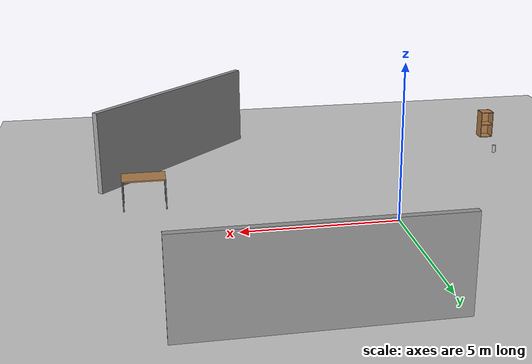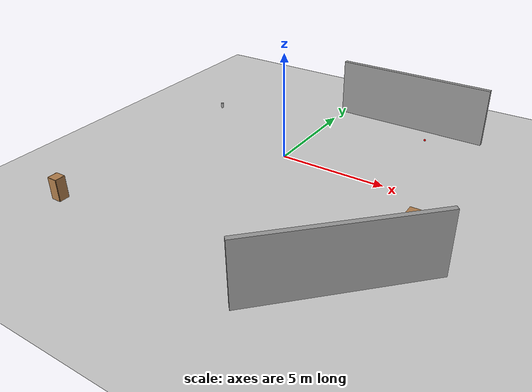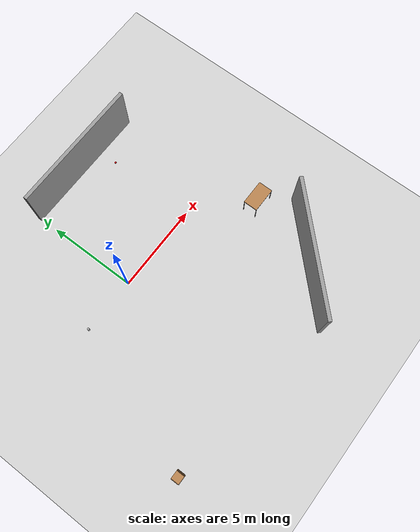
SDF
<sdf version="1.6">
 <world name="default">
  <light name="sun" type="directional">
   <pose>0 0 10 0 -0 0</pose>
   <diffuse>0.8 0.8 0.8 1</diffuse>
   <specular>0.1 0.1 0.1 1</specular>
   <attenuation>
    <range>1000</range>
    <constant>0.9</constant>
    <linear>0.01</linear>
    <quadratic>0.001</quadratic>
   </attenuation>
   <direction>-0.5 0.5 -1</direction>
  </light>
  <model name="ground_plane">
   <static>1</static>
   <link name="link">
    <collision name="collision">
     <geometry><plane><normal>0 0 1</normal><size>100 100</size></plane></geometry>
     <surface><friction><ode><mu>100</mu><mu2>50</mu2></ode></friction></surface>
    </collision>
    <visual name="visual">
     <cast_shadows>0</cast_shadows>
     <geometry><plane><normal>0 0 1</normal><size>100 100</size></plane></geometry>
     <material>
      <script><uri>file://media/materials/scripts/gazebo.material</uri><name>Gazebo/Grey</name></script>
     </material>
    </visual>
   </link>
  </model>
  <gravity>0 0 -9.8</gravity>
  <magnetic_field>6e-06 2.3e-05 -4.2e-05</magnetic_field>
  <atmosphere type="adiabatic"/>
  <physics name="default_physics" default="0" type="ode">
   <max_step_size>0.001</max_step_size>
   <real_time_factor>1</real_time_factor>
   <real_time_update_rate>1000</real_time_update_rate>
  </physics>
  <scene><ambient>0.4 0.4 0.4 1</ambient><background>0.7 0.7 0.7 1</background><shadows>1</shadows></scene>
  <spherical_coordinates>
   <surface_model>EARTH_WGS84</surface_model>
   <latitude_deg>0</latitude_deg>
   <longitude_deg>0</longitude_deg>
   <elevation>0</elevation>
   <heading_deg>0</heading_deg>
  </spherical_coordinates>
  <model name="beer">
   <link name="link">
    <pose>0 0 0.115 0 -0 0</pose>
    <inertial>
     <mass>0.39</mass>
     <inertia><ixx>0.00058</ixx><ixy>0</ixy><ixz>0</ixz><iyy>0.00058</iyy><iyz>0</iyz><izz>0.00019</izz></inertia>
    </inertial>
    <collision name="collision">
     <geometry><cylinder><radius>0.055</radius><length>0.23</length></cylinder></geometry>
    </collision>
    <visual name="visual">
     <geometry><cylinder><radius>0.055</radius><length>0.23</length></cylinder></geometry>
     <material>
      <script>
       <uri>model://beer/materials/scripts</uri>
       <uri>model://beer/materials/textures</uri>
       <name>Beer/Diffuse</name>
      </script>
     </material>
    </visual>
   </link>
   <pose>-3.1537 -0.469796 1.91505 -1.9e-05 1e-05 -0.001125</pose>
  </model>
  <model name="cabinet">
   <static>1</static>
   <link name="cabinet_bottom_plate">
    <inertial>
     <pose>0 0 -1 0 -0 0</pose>
     <inertia><ixx>2.05</ixx><ixy>0</ixy><ixz>0</ixz><iyy>2.05</iyy><iyz>0</iyz><izz>2.05</izz></inertia>
     <mass>25</mass>
    </inertial>
    <collision name="cabinet_bottom_plate_geom">
     <pose>0 0 0.01 0 -0 0</pose>
     <geometry><box><size>0.45 0.45 0.02</size></box></geometry>
    </collision>
    <visual name="cabinet_bottom_plate_geom_visual">
     <pose>0 0 0.01 0 -0 0</pose>
     <geometry><box><size>0.45 0.45 0.02</size></box></geometry>
     <material>
      <script><uri>file://media/materials/scripts/gazebo.material</uri><name>Gazebo/Wood</name></script>
     </material>
    </visual>
    <collision name="cabinet_bottom_plate_geom_cabinet_back_plate">
     <pose>0.235 0 0.51 0 -0 0</pose>
     <geometry><box><size>0.02 0.45 1.02</size></box></geometry>
    </collision>
    <visual name="cabinet_bottom_plate_geom_cabinet_back_plate_visual">
     <pose>0.235 0 0.51 0 -0 0</pose>
     <geometry><box><size>0.02 0.45 1.02</size></box></geometry>
     <material>
      <script><uri>file://media/materials/scripts/gazebo.material</uri><name>Gazebo/Wood</name></script>
     </material>
    </visual>
    <collision name="cabinet_bottom_plate_geom_cabinet_left_plate">
     <pose>0 0.235 0.51 0 -0 0</pose>
     <geometry><box><size>0.45 0.02 1.02</size></box></geometry>
    </collision>
    <visual name="cabinet_bottom_plate_geom_cabinet_left_plate_visual">
     <pose>0 0.235 0.51 0 -0 0</pose>
     <geometry><box><size>0.45 0.02 1.02</size></box></geometry>
     <material>
      <script><uri>file://media/materials/scripts/gazebo.material</uri><name>Gazebo/Wood</name></script>
     </material>
    </visual>
    <collision name="cabinet_bottom_plate_geom_cabinet_middle_plate">
     <pose>0 0 0.51 0 -0 0</pose>
     <geometry><box><size>0.45 0.45 0.02</size></box></geometry>
    </collision>
    <visual name="cabinet_bottom_plate_geom_cabinet_middle_plate_visual">
     <pose>0 0 0.51 0 -0 0</pose>
     <geometry><box><size>0.45 0.45 0.02</size></box></geometry>
     <material>
      <script><uri>file://media/materials/scripts/gazebo.material</uri><name>Gazebo/Wood</name></script>
     </material>
    </visual>
    <collision name="cabinet_bottom_plate_geom_cabinet_right_plate">
     <pose>0 -0.235 0.51 0 -0 0</pose>
     <geometry><box><size>0.45 0.02 1.02</size></box></geometry>
    </collision>
    <visual name="cabinet_bottom_plate_geom_cabinet_right_plate_visual">
     <pose>0 -0.235 0.51 0 -0 0</pose>
     <geometry><box><size>0.45 0.02 1.02</size></box></geometry>
     <material>
      <script><uri>file://media/materials/scripts/gazebo.material</uri><name>Gazebo/Wood</name></script>
     </material>
    </visual>
    <collision name="cabinet_bottom_plate_geom_cabinet_top_plate">
     <pose>0 0 1.01 0 -0 0</pose>
     <geometry><box><size>0.45 0.45 0.02</size></box></geometry>
    </collision>
    <visual name="cabinet_bottom_plate_geom_cabinet_top_plate_visual">
     <pose>0 0 1.01 0 -0 0</pose>
     <geometry><box><size>0.45 0.45 0.02</size></box></geometry>
     <material>
      <script><uri>file://media/materials/scripts/gazebo.material</uri><name>Gazebo/Wood</name></script>
     </material>
    </visual>
   </link>
   <pose>-5.94697 -7.97893 0 0 0 -1.5708</pose>
  </model>
  <model name="table">
   <static>0</static>
   <link name="link">
    <collision name="surface">
     <pose>0 0 1 0 -0 0</pose>
     <geometry><box><size>1.5 0.8 0.03</size></box></geometry>
     <surface><friction><ode><mu>0.6</mu><mu2>0.6</mu2></ode></friction></surface>
    </collision>
    <visual name="visual1">
     <pose>0 0 1 0 -0 0</pose>
     <geometry><box><size>1.4 0.8 0.04</size></box></geometry>
     <material>
      <script><uri>file://media/materials/scripts/gazebo.material</uri><name>Gazebo/Wood</name></script>
     </material>
    </visual>
    <collision name="front_left_leg">
     <pose>0.68 0.38 0.5 0 -0 0</pose>
     <geometry><cylinder><radius>0.02</radius><length>1</length></cylinder></geometry>
    </collision>
    <visual name="front_left_leg">
     <pose>0.68 0.38 0.5 0 -0 0</pose>
     <geometry><cylinder><radius>0.02</radius><length>1</length></cylinder></geometry>
     <material>
      <script><uri>file://media/materials/scripts/gazebo.material</uri><name>Gazebo/Grey</name></script>
     </material>
    </visual>
    <collision name="front_right_leg">
     <pose>0.68 -0.38 0.5 0 -0 0</pose>
     <geometry><cylinder><radius>0.02</radius><length>1</length></cylinder></geometry>
    </collision>
    <visual name="front_right_leg">
     <pose>0.68 -0.38 0.5 0 -0 0</pose>
     <geometry><cylinder><radius>0.02</radius><length>1</length></cylinder></geometry>
     <material>
      <script><uri>file://media/materials/scripts/gazebo.material</uri><name>Gazebo/Grey</name></script>
     </material>
    </visual>
    <collision name="back_right_leg">
     <pose>-0.68 -0.38 0.5 0 -0 0</pose>
     <geometry><cylinder><radius>0.02</radius><length>1</length></cylinder></geometry>
    </collision>
    <visual name="back_right_leg">
     <pose>-0.68 -0.38 0.5 0 -0 0</pose>
     <geometry><cylinder><radius>0.02</radius><length>1</length></cylinder></geometry>
     <material>
      <script><uri>file://media/materials/scripts/gazebo.material</uri><name>Gazebo/Grey</name></script>
     </material>
    </visual>
    <collision name="back_left_leg">
     <pose>-0.68 0.38 0.5 0 -0 0</pose>
     <geometry><cylinder><radius>0.02</radius><length>1</length></cylinder></geometry>
    </collision>
    <visual name="back_left_leg">
     <pose>-0.68 0.38 0.5 0 -0 0</pose>
     <geometry><cylinder><radius>0.02</radius><length>1</length></cylinder></geometry>
     <material>
      <script><uri>file://media/materials/scripts/gazebo.material</uri><name>Gazebo/Grey</name></script>
     </material>
    </visual>
    <inertial>
     <inertia><ixx>1</ixx><ixy>0</ixy><ixz>0</ixz><iyy>1</iyy><iyz>0</iyz><izz>1</izz></inertia>
     <mass>1</mass>
    </inertial>
   </link>
   <pose>7.75264 -2.69574 0 0 -0 0</pose>
  </model>
  <model name="grey_wall">
   <static>1</static>
   <link name="link">
    <pose>0 0 1.4 0 -0 0</pose>
    <collision name="collision"><geometry><box><size>7.5 0.2 2.8</size></box></geometry></collision>
    <visual name="visual">
     <cast_shadows>0</cast_shadows>
     <geometry><box><size>7.5 0.2 2.8</size></box></geometry>
     <material>
      <script>
       <uri>model://grey_wall/materials/scripts</uri>
       <uri>model://grey_wall/materials/textures</uri>
       <name>vrc/grey_wall</name>
      </script>
     </material>
    </visual>
   </link>
   <pose>3.68095 6.09936 0 0 -0 0</pose>
  </model>
  <model name="grey_wall_clone">
   <static>1</static>
   <link name="link">
    <pose>0 0 1.4 0 -0 0</pose>
    <collision name="collision"><geometry><box><size>7.5 0.2 2.8</size></box></geometry></collision>
    <visual name="visual">
     <cast_shadows>0</cast_shadows>
     <geometry><box><size>7.5 0.2 2.8</size></box></geometry>
     <material>
      <script>
       <uri>model://grey_wall/materials/scripts</uri>
       <uri>model://grey_wall/materials/textures</uri>
       <name>vrc/grey_wall</name>
      </script>
     </material>
    </visual>
   </link>
   <pose>6.55182 -6.77759 0 0 -0 0.784762</pose>
  </model>
  <model name="red_ball">
   <link name="link">
    <inertial>
     <mass>0.2</mass>
     <inertia><ixx>0.1</ixx><ixy>0</ixy><ixz>0</ixz><iyy>0.1</iyy><iyz>0</iyz><izz>0.1</izz></inertia>
    </inertial>
    <visual name="visual">
     <geometry><sphere><radius>0.05</radius></sphere></geometry>
     <material>
      <script><name>Gazebo/Grey</name><uri>file://media/materials/scripts/gazebo.material</uri></script>
      <ambient>1 0 0 1</ambient>
      <diffuse>1 0 0 1</diffuse>
      <specular>0.01 0.01 0.01 1</specular>
      <emissive>0 0 0 1</emissive>
      <shader type="vertex"><normal_map>__default__</normal_map></shader>
     </material>
    </visual>
    <collision name="collision">
     <geometry><sphere><radius>0.05</radius></sphere></geometry>
     <surface>
      <friction>
       <ode><mu>1</mu><mu2>1</mu2><fdir1>0 0 0</fdir1><slip1>0</slip1><slip2>0</slip2></ode>
       <torsional>
        <coefficient>1</coefficient>
        <patch_radius>0</patch_radius>
        <surface_radius>0</surface_radius>
        <use_patch_radius>1</use_patch_radius>
        <ode><slip>0</slip></ode>
       </torsional>
      </friction>
      <bounce><restitution_coefficient>0</restitution_coefficient><threshold>1e+06</threshold></bounce>
      <contact>
       <collide_without_contact>0</collide_without_contact>
       <collide_without_contact_bitmask>1</collide_without_contact_bitmask>
       <collide_bitmask>1</collide_bitmask>
       <ode>
        <soft_cfm>0</soft_cfm>
        <soft_erp>0.2</soft_erp>
        <kp>1e+13</kp>
        <kd>1</kd>
        <max_vel>0.01</max_vel>
        <min_depth>0</min_depth>
       </ode>
       <bullet>
        <split_impulse>1</split_impulse>
        <split_impulse_penetration_threshold>-0.01</split_impulse_penetration_threshold>
        <soft_cfm>0</soft_cfm>
        <soft_erp>0.2</soft_erp>
        <kp>1e+13</kp>
        <kd>1</kd>
       </bullet>
      </contact>
     </surface>
    </collision>
   </link>
   <static>0</static>
   <pose>5 5 0.05 0 -0 0</pose>
  </model>
 </world>
</sdf>
